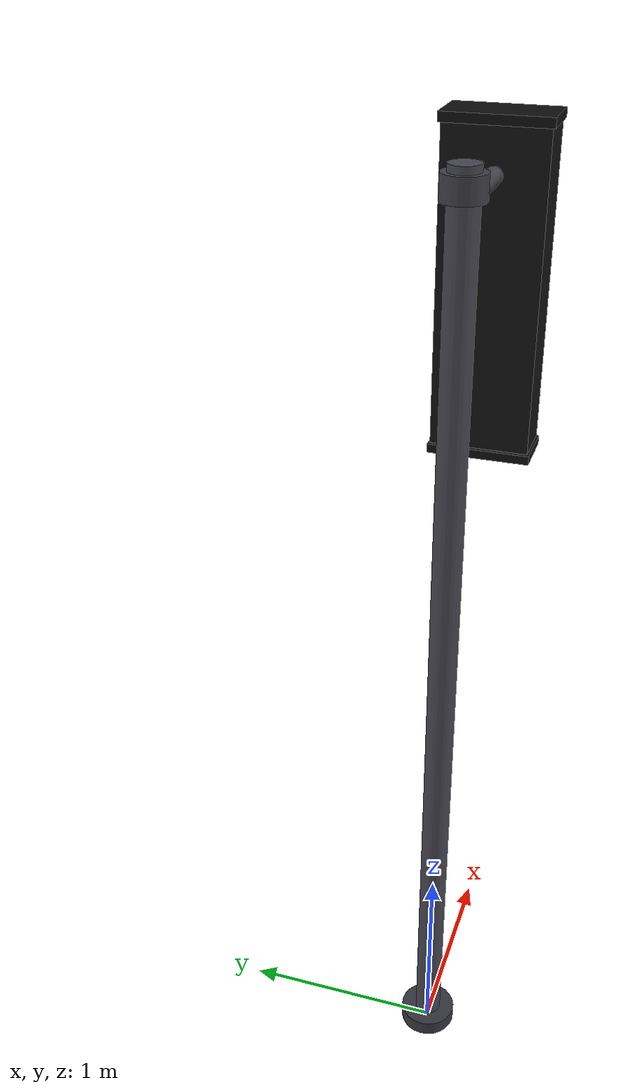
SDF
<?xml version="1.0"?>
<sdf version="1.6">
  <model name="traffic_light">
    <static>true</static>
    <link name="link">

      <!-- ══ DİREK ══ -->
      <visual name="pole">
        <pose>0 0 2.25 0 0 0</pose>
        <geometry><cylinder><radius>0.065</radius><length>4.5</length></cylinder></geometry>
        <material>
          <ambient>0.22 0.22 0.25 1</ambient>
          <diffuse>0.28 0.28 0.32 1</diffuse>
          <specular>0.5 0.5 0.5 1</specular>
        </material>
      </visual>

      <!-- Taban flanş -->
      <visual name="base_flange">
        <pose>0 0 0.04 0 0 0</pose>
        <geometry><cylinder><radius>0.14</radius><length>0.08</length></cylinder></geometry>
        <material>
          <ambient>0.18 0.18 0.20 1</ambient>
          <diffuse>0.22 0.22 0.25 1</diffuse>
        </material>
      </visual>

      <!-- Üst flanş -->
      <visual name="top_flange">
        <pose>0 0 4.42 0 0 0</pose>
        <geometry><cylinder><radius>0.09</radius><length>0.10</length></cylinder></geometry>
        <material>
          <ambient>0.20 0.20 0.22 1</ambient>
          <diffuse>0.25 0.25 0.28 1</diffuse>
        </material>
      </visual>

      <!-- ══ KOL ══ -->
      <visual name="arm">
        <pose>0.275 0 4.35 0 1.5708 0</pose>
        <geometry><cylinder><radius>0.038</radius><length>0.55</length></cylinder></geometry>
        <material>
          <ambient>0.20 0.20 0.22 1</ambient>
          <diffuse>0.25 0.25 0.28 1</diffuse>
        </material>
      </visual>

      <!-- ══ GÖVDE ══ -->
      <visual name="housing">
        <pose>0.61 0 3.875 0 0 0</pose>
        <geometry><box><size>0.22 0.44 1.35</size></box></geometry>
        <material>
          <ambient>0.05 0.05 0.05 1</ambient>
          <diffuse>0.07 0.07 0.07 1</diffuse>
          <specular>0.12 0.12 0.12 1</specular>
        </material>
      </visual>
      <visual name="housing_top">
        <pose>0.61 0 4.555 0 0 0</pose>
        <geometry><box><size>0.24 0.46 0.04</size></box></geometry>
        <material><ambient>0.04 0.04 0.04 1</ambient><diffuse>0.06 0.06 0.06 1</diffuse></material>
      </visual>
      <visual name="housing_bot">
        <pose>0.61 0 3.175 0 0 0</pose>
        <geometry><box><size>0.24 0.46 0.04</size></box></geometry>
        <material><ambient>0.04 0.04 0.04 1</ambient><diffuse>0.06 0.06 0.06 1</diffuse></material>
      </visual>

      <!-- ══ KIRMIZI LENS  z=4.30 ══ -->
      <visual name="ring_red">
        <pose>0.725 0 4.30 1.5708 0 0</pose>
        <geometry><cylinder><radius>0.138</radius><length>0.05</length></cylinder></geometry>
        <material>
          <ambient>0.20 0.02 0.02 1</ambient>
          <diffuse>0.15 0.01 0.01 1</diffuse>
        </material>
      </visual>
      <visual name="face_red">
        <pose>0.752 0 4.30 1.5708 0 0</pose>
        <geometry><cylinder><radius>0.118</radius><length>0.014</length></cylinder></geometry>
        <material>
          <ambient>0.08 0.01 0.01 1</ambient>
          <diffuse>0.06 0.00 0.00 1</diffuse>
        </material>
      </visual>
      <visual name="visor_red">
        <pose>0.700 0 4.455 0 -0.35 0</pose>
        <geometry><box><size>0.09 0.42 0.055</size></box></geometry>
        <material><ambient>0.04 0.04 0.04 1</ambient><diffuse>0.05 0.05 0.05 1</diffuse></material>
      </visual>

      <!-- ══ SARI LENS  z=3.85 ══ -->
      <visual name="ring_yellow">
        <pose>0.725 0 3.85 1.5708 0 0</pose>
        <geometry><cylinder><radius>0.138</radius><length>0.05</length></cylinder></geometry>
        <material>
          <ambient>0.20 0.16 0.02 1</ambient>
          <diffuse>0.16 0.12 0.01 1</diffuse>
        </material>
      </visual>
      <visual name="face_yellow">
        <pose>0.752 0 3.85 1.5708 0 0</pose>
        <geometry><cylinder><radius>0.118</radius><length>0.014</length></cylinder></geometry>
        <material>
          <ambient>0.12 0.09 0.01 1</ambient>
          <diffuse>0.08 0.06 0.00 1</diffuse>
        </material>
      </visual>
      <visual name="visor_yellow">
        <pose>0.700 0 4.005 0 -0.35 0</pose>
        <geometry><box><size>0.09 0.42 0.055</size></box></geometry>
        <material><ambient>0.04 0.04 0.04 1</ambient><diffuse>0.05 0.05 0.05 1</diffuse></material>
      </visual>

      <!-- ══ YEŞİL LENS  z=3.40 ══ -->
      <visual name="ring_green">
        <pose>0.725 0 3.40 1.5708 0 0</pose>
        <geometry><cylinder><radius>0.138</radius><length>0.05</length></cylinder></geometry>
        <material>
          <ambient>0.02 0.20 0.04 1</ambient>
          <diffuse>0.01 0.15 0.02 1</diffuse>
        </material>
      </visual>
      <visual name="face_green">
        <pose>0.752 0 3.40 1.5708 0 0</pose>
        <geometry><cylinder><radius>0.118</radius><length>0.014</length></cylinder></geometry>
        <material>
          <ambient>0.01 0.08 0.01 1</ambient>
          <diffuse>0.00 0.06 0.00 1</diffuse>
        </material>
      </visual>
      <visual name="visor_green">
        <pose>0.700 0 3.555 0 -0.35 0</pose>
        <geometry><box><size>0.09 0.42 0.055</size></box></geometry>
        <material><ambient>0.04 0.04 0.04 1</ambient><diffuse>0.05 0.05 0.05 1</diffuse></material>
      </visual>

      <!-- Çarpışma -->
      <collision name="col_pole">
        <pose>0 0 2.25 0 0 0</pose>
        <geometry><cylinder><radius>0.065</radius><length>4.5</length></cylinder></geometry>
      </collision>

    </link>
  </model>
</sdf>
